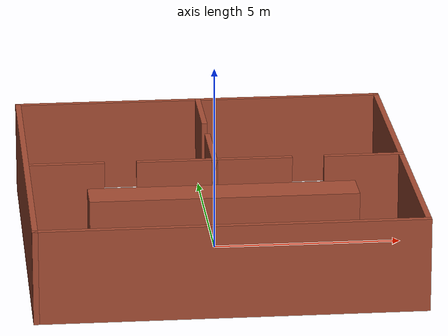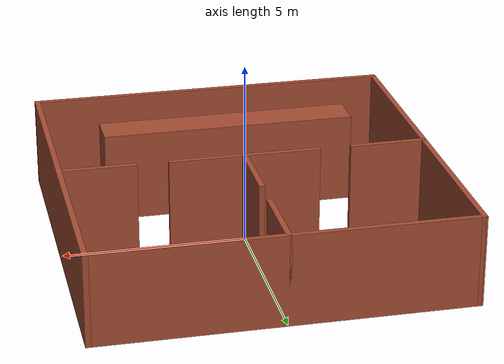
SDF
<?xml version='1.0'?>
<sdf version='1.7'>
  <model name='Env2_Walls'>
    <pose>0 0 0 0 -0 0</pose>
    <link name='Wall_0'>
      <collision name='Wall_0_Collision'>
        <geometry>
          <box>
            <size>10.15 0.15 2.5</size>
          </box>
        </geometry>
        <pose>0 0 1.25 0 -0 0</pose>
      </collision>
      <visual name='Wall_0_Visual'>
        <pose>0 0 1.25 0 -0 0</pose>
        <geometry>
          <box>
            <size>10.15 0.15 2.5</size>
          </box>
        </geometry>
        <material>
          <script>
            <uri>file://media/materials/scripts/gazebo.material</uri>
            <name>Gazebo/Bricks</name>
          </script>
          <ambient>1 1 1 1</ambient>
        </material>
        <meta>
          <layer>0</layer>
        </meta>
      </visual>
      <pose>0 5 0 0 -0 0</pose>
    </link>
    <link name='Wall_1'>
      <collision name='Wall_1_Collision'>
        <geometry>
          <box>
            <size>10.15 0.15 2.5</size>
          </box>
        </geometry>
        <pose>0 0 1.25 0 -0 0</pose>
      </collision>
      <visual name='Wall_1_Visual'>
        <pose>0 0 1.25 0 -0 0</pose>
        <geometry>
          <box>
            <size>10.15 0.15 2.5</size>
          </box>
        </geometry>
        <material>
          <script>
            <uri>file://media/materials/scripts/gazebo.material</uri>
            <name>Gazebo/Bricks</name>
          </script>
          <ambient>1 1 1 1</ambient>
        </material>
        <meta>
          <layer>0</layer>
        </meta>
      </visual>
      <pose>5 0 0 0 -0 -1.5708</pose>
    </link>
    <link name='Wall_11'>
      <collision name='Wall_11_Collision'>
        <geometry>
          <box>
            <size>2.15 0.15 2.5</size>
          </box>
        </geometry>
        <pose>0 0 1.25 0 -0 0</pose>
      </collision>
      <visual name='Wall_11_Visual'>
        <pose>0 0 1.25 0 -0 0</pose>
        <geometry>
          <box>
            <size>2.15 0.15 2.5</size>
          </box>
        </geometry>
        <material>
          <script>
            <uri>file://media/materials/scripts/gazebo.material</uri>
            <name>Gazebo/Bricks</name>
          </script>
          <ambient>1 1 1 1</ambient>
        </material>
        <meta>
          <layer>0</layer>
        </meta>
      </visual>
      <pose>0 1 0 0 -0 1.5708</pose>
    </link>
    <link name='Wall_13'>
      <collision name='Wall_13_Collision'>
        <geometry>
          <box>
            <size>2.15 0.15 2.5</size>
          </box>
        </geometry>
        <pose>0 0 1.25 0 -0 0</pose>
      </collision>
      <visual name='Wall_13_Visual'>
        <pose>0 0 1.25 0 -0 0</pose>
        <geometry>
          <box>
            <size>2.15 0.15 2.5</size>
          </box>
        </geometry>
        <material>
          <script>
            <uri>file://media/materials/scripts/gazebo.material</uri>
            <name>Gazebo/Bricks</name>
          </script>
          <ambient>1 1 1 1</ambient>
        </material>
        <meta>
          <layer>0</layer>
        </meta>
      </visual>
      <pose>4 0 0 0 -0 0</pose>
    </link>
    <link name='Wall_15'>
      <collision name='Wall_15_Collision'>
        <geometry>
          <box>
            <size>2.15 0.15 2.5</size>
          </box>
        </geometry>
        <pose>0 0 1.25 0 -0 0</pose>
      </collision>
      <visual name='Wall_15_Visual'>
        <pose>0 0 1.25 0 -0 0</pose>
        <geometry>
          <box>
            <size>2.15 0.15 2.5</size>
          </box>
        </geometry>
        <material>
          <script>
            <uri>file://media/materials/scripts/gazebo.material</uri>
            <name>Gazebo/Bricks</name>
          </script>
          <ambient>1 1 1 1</ambient>
        </material>
        <meta>
          <layer>0</layer>
        </meta>
      </visual>
      <pose>-4 0 0 0 -0 3.14159</pose>
    </link>
    <link name='Wall_17'>
      <collision name='Wall_17_Collision'>
        <geometry>
          <box>
            <size>2.15 0.15 2.5</size>
          </box>
        </geometry>
        <pose>0 0 1.25 0 -0 0</pose>
      </collision>
      <visual name='Wall_17_Visual'>
        <pose>0 0 1.25 0 -0 0</pose>
        <geometry>
          <box>
            <size>2.15 0.15 2.5</size>
          </box>
        </geometry>
        <material>
          <script>
            <uri>file://media/materials/scripts/gazebo.material</uri>
            <name>Gazebo/Bricks</name>
          </script>
          <ambient>1 1 1 1</ambient>
        </material>
        <meta>
          <layer>0</layer>
        </meta>
      </visual>
      <pose>0 4 0 0 -0 1.5708</pose>
    </link>
    <link name='Wall_19'>
      <collision name='Wall_19_Collision'>
        <geometry>
          <box>
            <size>7 1 2.5</size>
          </box>
        </geometry>
        <pose>0 0 1.25 0 -0 0</pose>
      </collision>
      <visual name='Wall_19_Visual'>
        <pose>0 0 1.25 0 -0 0</pose>
        <geometry>
          <box>
            <size>7 1 2.5</size>
          </box>
        </geometry>
        <material>
          <script>
            <uri>file://media/materials/scripts/gazebo.material</uri>
            <name>Gazebo/Bricks</name>
          </script>
          <ambient>1 1 1 1</ambient>
        </material>
        <meta>
          <layer>0</layer>
        </meta>
      </visual>
      <pose>0 -2.5 0 0 -0 0</pose>
    </link>
    <link name='Wall_2'>
      <collision name='Wall_2_Collision'>
        <geometry>
          <box>
            <size>10.15 0.15 2.5</size>
          </box>
        </geometry>
        <pose>0 0 1.25 0 -0 0</pose>
      </collision>
      <visual name='Wall_2_Visual'>
        <pose>0 0 1.25 0 -0 0</pose>
        <geometry>
          <box>
            <size>10.15 0.15 2.5</size>
          </box>
        </geometry>
        <material>
          <script>
            <uri>file://media/materials/scripts/gazebo.material</uri>
            <name>Gazebo/Bricks</name>
          </script>
          <ambient>1 1 1 1</ambient>
        </material>
        <meta>
          <layer>0</layer>
        </meta>
      </visual>
      <pose>0 -5 0 0 -0 3.14159</pose>
    </link>
    <link name='Wall_3'>
      <collision name='Wall_3_Collision'>
        <geometry>
          <box>
            <size>10.15 0.15 2.5</size>
          </box>
        </geometry>
        <pose>0 0 1.25 0 -0 0</pose>
      </collision>
      <visual name='Wall_3_Visual'>
        <pose>0 0 1.25 0 -0 0</pose>
        <geometry>
          <box>
            <size>10.15 0.15 2.5</size>
          </box>
        </geometry>
        <material>
          <script>
            <uri>file://media/materials/scripts/gazebo.material</uri>
            <name>Gazebo/Bricks</name>
          </script>
          <ambient>1 1 1 1</ambient>
        </material>
        <meta>
          <layer>0</layer>
        </meta>
      </visual>
      <pose>-5 0 0 0 -0 1.5708</pose>
    </link>
    <link name='Wall_6'>
      <collision name='Wall_6_Collision'>
        <geometry>
          <box>
            <size>2.15 0.15 2.5</size>
          </box>
        </geometry>
        <pose>0 0 1.25 0 -0 0</pose>
      </collision>
      <visual name='Wall_6_Visual'>
        <pose>0 0 1.25 0 -0 0</pose>
        <geometry>
          <box>
            <size>2.15 0.15 2.5</size>
          </box>
        </geometry>
        <material>
          <script>
            <uri>file://media/materials/scripts/gazebo.material</uri>
            <name>Gazebo/Bricks</name>
          </script>
          <ambient>1 1 1 1</ambient>
        </material>
        <meta>
          <layer>0</layer>
        </meta>
      </visual>
      <pose>1 0 0 0 -0 3.14159</pose>
    </link>
    <link name='Wall_9'>
      <collision name='Wall_9_Collision'>
        <geometry>
          <box>
            <size>2.15 0.15 2.5</size>
          </box>
        </geometry>
        <pose>0 0 1.25 0 -0 0</pose>
      </collision>
      <visual name='Wall_9_Visual'>
        <pose>0 0 1.25 0 -0 0</pose>
        <geometry>
          <box>
            <size>2.15 0.15 2.5</size>
          </box>
        </geometry>
        <material>
          <script>
            <uri>file://media/materials/scripts/gazebo.material</uri>
            <name>Gazebo/Bricks</name>
          </script>
          <ambient>1 1 1 1</ambient>
        </material>
        <meta>
          <layer>0</layer>
        </meta>
      </visual>
      <pose>-1 0 0 0 -0 3.14159</pose>
    </link>
    <static>1</static>
  </model>
</sdf>
